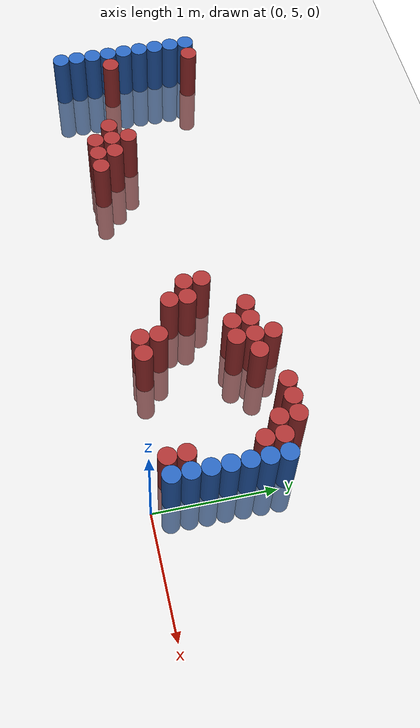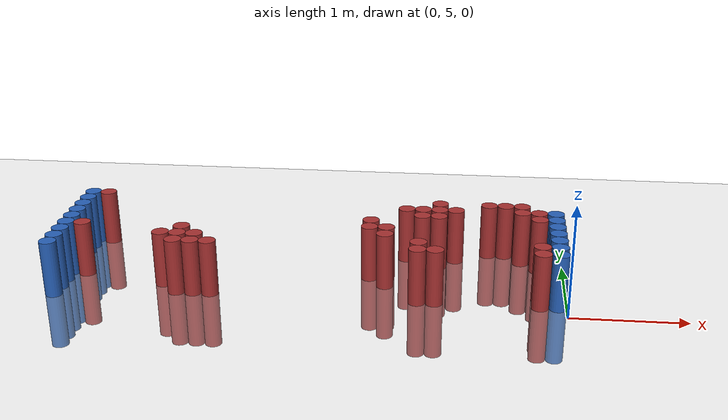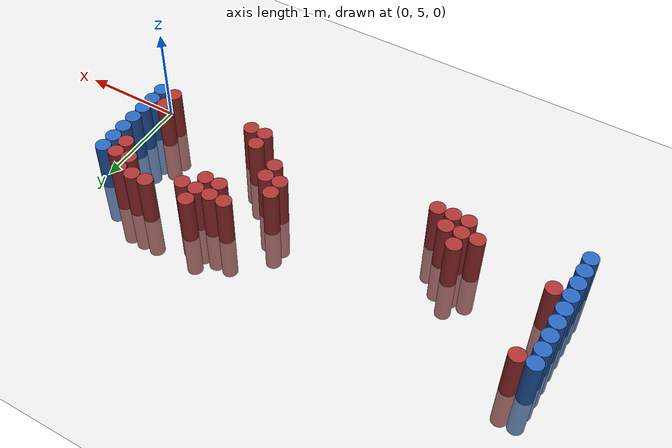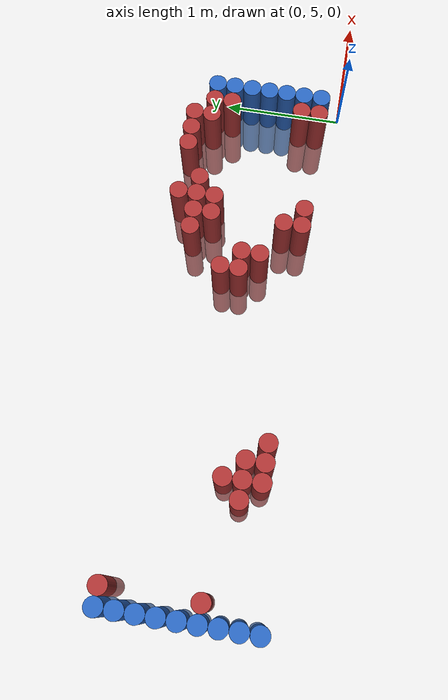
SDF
<sdf version="1.6">
 <world name="default">
  <model name="ground_plane">
   <static>1</static>
   <link name="link">
    <collision name="collision">
     <geometry><plane><normal>0 0 1</normal><size>100 100</size></plane></geometry>
     <surface><friction><ode><mu>100</mu><mu2>50</mu2></ode></friction></surface>
    </collision>
    <visual name="visual">
     <cast_shadows>0</cast_shadows>
     <geometry><plane><normal>0 0 1</normal><size>100 100</size></plane></geometry>
     <material>
      <script><uri>file://media/materials/scripts/gazebo.material</uri><name>Gazebo/Grey</name></script>
     </material>
    </visual>
   </link>
  </model>
  <model name="unit_cylinder_95">
   <static>1</static>
   <pose>-4.425000 5.025000 0.000000 0.000000 0.000000 0.000000</pose>
   <link name="link">
    <inertial>
     <mass>1</mass>
     <inertia><ixx>0.145833</ixx><ixy>0</ixy><ixz>0</ixz><iyy>0.145833</iyy><iyz>0</iyz><izz>0.125</izz></inertia>
    </inertial>
    <collision name="collision">
     <geometry><cylinder><radius>0.075000</radius><length>1</length></cylinder></geometry>
    </collision>
    <visual name="visual">
     <geometry><cylinder><radius>0.075000</radius><length>1</length></cylinder></geometry>
     <material>
      <ambient>0.152000 0.379000 0.720000 1</ambient>
      <diffuse>0.152000 0.379000 0.720000 1</diffuse>
     </material>
     <material>
      <script><name>Gazebo/Grey</name><uri>file://media/materials/scripts/gazebo.material</uri></script>
     </material>
    </visual>
   </link>
  </model>
  <model name="unit_cylinder_96">
   <static>1</static>
   <pose>-4.425000 5.175000 0.000000 0.000000 0.000000 0.000000</pose>
   <link name="link">
    <inertial>
     <mass>1</mass>
     <inertia><ixx>0.145833</ixx><ixy>0</ixy><ixz>0</ixz><iyy>0.145833</iyy><iyz>0</iyz><izz>0.125</izz></inertia>
    </inertial>
    <collision name="collision">
     <geometry><cylinder><radius>0.075000</radius><length>1</length></cylinder></geometry>
    </collision>
    <visual name="visual">
     <geometry><cylinder><radius>0.075000</radius><length>1</length></cylinder></geometry>
     <material>
      <ambient>0.152000 0.379000 0.720000 1</ambient>
      <diffuse>0.152000 0.379000 0.720000 1</diffuse>
     </material>
     <material>
      <script><name>Gazebo/Grey</name><uri>file://media/materials/scripts/gazebo.material</uri></script>
     </material>
    </visual>
   </link>
  </model>
  <model name="unit_cylinder_97">
   <static>1</static>
   <pose>-4.425000 5.325000 0.000000 0.000000 0.000000 0.000000</pose>
   <link name="link">
    <inertial>
     <mass>1</mass>
     <inertia><ixx>0.145833</ixx><ixy>0</ixy><ixz>0</ixz><iyy>0.145833</iyy><iyz>0</iyz><izz>0.125</izz></inertia>
    </inertial>
    <collision name="collision">
     <geometry><cylinder><radius>0.075000</radius><length>1</length></cylinder></geometry>
    </collision>
    <visual name="visual">
     <geometry><cylinder><radius>0.075000</radius><length>1</length></cylinder></geometry>
     <material>
      <ambient>0.152000 0.379000 0.720000 1</ambient>
      <diffuse>0.152000 0.379000 0.720000 1</diffuse>
     </material>
     <material>
      <script><name>Gazebo/Grey</name><uri>file://media/materials/scripts/gazebo.material</uri></script>
     </material>
    </visual>
   </link>
  </model>
  <model name="unit_cylinder_98">
   <static>1</static>
   <pose>-4.425000 5.475000 0.000000 0.000000 0.000000 0.000000</pose>
   <link name="link">
    <inertial>
     <mass>1</mass>
     <inertia><ixx>0.145833</ixx><ixy>0</ixy><ixz>0</ixz><iyy>0.145833</iyy><iyz>0</iyz><izz>0.125</izz></inertia>
    </inertial>
    <collision name="collision">
     <geometry><cylinder><radius>0.075000</radius><length>1</length></cylinder></geometry>
    </collision>
    <visual name="visual">
     <geometry><cylinder><radius>0.075000</radius><length>1</length></cylinder></geometry>
     <material>
      <ambient>0.152000 0.379000 0.720000 1</ambient>
      <diffuse>0.152000 0.379000 0.720000 1</diffuse>
     </material>
     <material>
      <script><name>Gazebo/Grey</name><uri>file://media/materials/scripts/gazebo.material</uri></script>
     </material>
    </visual>
   </link>
  </model>
  <model name="unit_cylinder_99">
   <static>1</static>
   <pose>-4.425000 5.625000 0.000000 0.000000 0.000000 0.000000</pose>
   <link name="link">
    <inertial>
     <mass>1</mass>
     <inertia><ixx>0.145833</ixx><ixy>0</ixy><ixz>0</ixz><iyy>0.145833</iyy><iyz>0</iyz><izz>0.125</izz></inertia>
    </inertial>
    <collision name="collision">
     <geometry><cylinder><radius>0.075000</radius><length>1</length></cylinder></geometry>
    </collision>
    <visual name="visual">
     <geometry><cylinder><radius>0.075000</radius><length>1</length></cylinder></geometry>
     <material>
      <ambient>0.152000 0.379000 0.720000 1</ambient>
      <diffuse>0.152000 0.379000 0.720000 1</diffuse>
     </material>
     <material>
      <script><name>Gazebo/Grey</name><uri>file://media/materials/scripts/gazebo.material</uri></script>
     </material>
    </visual>
   </link>
  </model>
  <model name="unit_cylinder_100">
   <static>1</static>
   <pose>-4.425000 5.775000 0.000000 0.000000 0.000000 0.000000</pose>
   <link name="link">
    <inertial>
     <mass>1</mass>
     <inertia><ixx>0.145833</ixx><ixy>0</ixy><ixz>0</ixz><iyy>0.145833</iyy><iyz>0</iyz><izz>0.125</izz></inertia>
    </inertial>
    <collision name="collision">
     <geometry><cylinder><radius>0.075000</radius><length>1</length></cylinder></geometry>
    </collision>
    <visual name="visual">
     <geometry><cylinder><radius>0.075000</radius><length>1</length></cylinder></geometry>
     <material>
      <ambient>0.152000 0.379000 0.720000 1</ambient>
      <diffuse>0.152000 0.379000 0.720000 1</diffuse>
     </material>
     <material>
      <script><name>Gazebo/Grey</name><uri>file://media/materials/scripts/gazebo.material</uri></script>
     </material>
    </visual>
   </link>
  </model>
  <model name="unit_cylinder_101">
   <static>1</static>
   <pose>-4.425000 5.925000 0.000000 0.000000 0.000000 0.000000</pose>
   <link name="link">
    <inertial>
     <mass>1</mass>
     <inertia><ixx>0.145833</ixx><ixy>0</ixy><ixz>0</ixz><iyy>0.145833</iyy><iyz>0</iyz><izz>0.125</izz></inertia>
    </inertial>
    <collision name="collision">
     <geometry><cylinder><radius>0.075000</radius><length>1</length></cylinder></geometry>
    </collision>
    <visual name="visual">
     <geometry><cylinder><radius>0.075000</radius><length>1</length></cylinder></geometry>
     <material>
      <ambient>0.152000 0.379000 0.720000 1</ambient>
      <diffuse>0.152000 0.379000 0.720000 1</diffuse>
     </material>
     <material>
      <script><name>Gazebo/Grey</name><uri>file://media/materials/scripts/gazebo.material</uri></script>
     </material>
    </visual>
   </link>
  </model>
  <model name="unit_cylinder_102">
   <static>1</static>
   <pose>-4.425000 6.075000 0.000000 0.000000 0.000000 0.000000</pose>
   <link name="link">
    <inertial>
     <mass>1</mass>
     <inertia><ixx>0.145833</ixx><ixy>0</ixy><ixz>0</ixz><iyy>0.145833</iyy><iyz>0</iyz><izz>0.125</izz></inertia>
    </inertial>
    <collision name="collision">
     <geometry><cylinder><radius>0.075000</radius><length>1</length></cylinder></geometry>
    </collision>
    <visual name="visual">
     <geometry><cylinder><radius>0.075000</radius><length>1</length></cylinder></geometry>
     <material>
      <ambient>0.152000 0.379000 0.720000 1</ambient>
      <diffuse>0.152000 0.379000 0.720000 1</diffuse>
     </material>
     <material>
      <script><name>Gazebo/Grey</name><uri>file://media/materials/scripts/gazebo.material</uri></script>
     </material>
    </visual>
   </link>
  </model>
  <model name="unit_cylinder_103">
   <static>1</static>
   <pose>-4.425000 6.225000 0.000000 0.000000 0.000000 0.000000</pose>
   <link name="link">
    <inertial>
     <mass>1</mass>
     <inertia><ixx>0.145833</ixx><ixy>0</ixy><ixz>0</ixz><iyy>0.145833</iyy><iyz>0</iyz><izz>0.125</izz></inertia>
    </inertial>
    <collision name="collision">
     <geometry><cylinder><radius>0.075000</radius><length>1</length></cylinder></geometry>
    </collision>
    <visual name="visual">
     <geometry><cylinder><radius>0.075000</radius><length>1</length></cylinder></geometry>
     <material>
      <ambient>0.152000 0.379000 0.720000 1</ambient>
      <diffuse>0.152000 0.379000 0.720000 1</diffuse>
     </material>
     <material>
      <script><name>Gazebo/Grey</name><uri>file://media/materials/scripts/gazebo.material</uri></script>
     </material>
    </visual>
   </link>
  </model>
  <model name="unit_cylinder_126">
   <static>1</static>
   <pose>-4.275000 5.475000 0.000000 0.000000 0.000000 0.000000</pose>
   <link name="link">
    <inertial>
     <mass>1</mass>
     <inertia><ixx>0.145833</ixx><ixy>0</ixy><ixz>0</ixz><iyy>0.145833</iyy><iyz>0</iyz><izz>0.125</izz></inertia>
    </inertial>
    <collision name="collision">
     <geometry><cylinder><radius>0.075000</radius><length>1</length></cylinder></geometry>
    </collision>
    <visual name="visual">
     <geometry><cylinder><radius>0.075000</radius><length>1</length></cylinder></geometry>
     <material>
      <ambient>0.648000 0.192000 0.192000 1</ambient>
      <diffuse>0.648000 0.192000 0.192000 1</diffuse>
     </material>
     <material>
      <script><name>Gazebo/Grey</name><uri>file://media/materials/scripts/gazebo.material</uri></script>
     </material>
    </visual>
   </link>
  </model>
  <model name="unit_cylinder_127">
   <static>1</static>
   <pose>-4.275000 6.225000 0.000000 0.000000 0.000000 0.000000</pose>
   <link name="link">
    <inertial>
     <mass>1</mass>
     <inertia><ixx>0.145833</ixx><ixy>0</ixy><ixz>0</ixz><iyy>0.145833</iyy><iyz>0</iyz><izz>0.125</izz></inertia>
    </inertial>
    <collision name="collision">
     <geometry><cylinder><radius>0.075000</radius><length>1</length></cylinder></geometry>
    </collision>
    <visual name="visual">
     <geometry><cylinder><radius>0.075000</radius><length>1</length></cylinder></geometry>
     <material>
      <ambient>0.648000 0.192000 0.192000 1</ambient>
      <diffuse>0.648000 0.192000 0.192000 1</diffuse>
     </material>
     <material>
      <script><name>Gazebo/Grey</name><uri>file://media/materials/scripts/gazebo.material</uri></script>
     </material>
    </visual>
   </link>
  </model>
  <model name="unit_cylinder_157">
   <static>1</static>
   <pose>-3.525000 5.325000 0.000000 0.000000 0.000000 0.000000</pose>
   <link name="link">
    <inertial>
     <mass>1</mass>
     <inertia><ixx>0.145833</ixx><ixy>0</ixy><ixz>0</ixz><iyy>0.145833</iyy><iyz>0</iyz><izz>0.125</izz></inertia>
    </inertial>
    <collision name="collision">
     <geometry><cylinder><radius>0.075000</radius><length>1</length></cylinder></geometry>
    </collision>
    <visual name="visual">
     <geometry><cylinder><radius>0.075000</radius><length>1</length></cylinder></geometry>
     <material>
      <ambient>0.648000 0.192000 0.192000 1</ambient>
      <diffuse>0.648000 0.192000 0.192000 1</diffuse>
     </material>
     <material>
      <script><name>Gazebo/Grey</name><uri>file://media/materials/scripts/gazebo.material</uri></script>
     </material>
    </visual>
   </link>
  </model>
  <model name="unit_cylinder_160">
   <static>1</static>
   <pose>-3.375000 5.175000 0.000000 0.000000 0.000000 0.000000</pose>
   <link name="link">
    <inertial>
     <mass>1</mass>
     <inertia><ixx>0.145833</ixx><ixy>0</ixy><ixz>0</ixz><iyy>0.145833</iyy><iyz>0</iyz><izz>0.125</izz></inertia>
    </inertial>
    <collision name="collision">
     <geometry><cylinder><radius>0.075000</radius><length>1</length></cylinder></geometry>
    </collision>
    <visual name="visual">
     <geometry><cylinder><radius>0.075000</radius><length>1</length></cylinder></geometry>
     <material>
      <ambient>0.648000 0.192000 0.192000 1</ambient>
      <diffuse>0.648000 0.192000 0.192000 1</diffuse>
     </material>
     <material>
      <script><name>Gazebo/Grey</name><uri>file://media/materials/scripts/gazebo.material</uri></script>
     </material>
    </visual>
   </link>
  </model>
  <model name="unit_cylinder_161">
   <static>1</static>
   <pose>-3.375000 5.325000 0.000000 0.000000 0.000000 0.000000</pose>
   <link name="link">
    <inertial>
     <mass>1</mass>
     <inertia><ixx>0.145833</ixx><ixy>0</ixy><ixz>0</ixz><iyy>0.145833</iyy><iyz>0</iyz><izz>0.125</izz></inertia>
    </inertial>
    <collision name="collision">
     <geometry><cylinder><radius>0.075000</radius><length>1</length></cylinder></geometry>
    </collision>
    <visual name="visual">
     <geometry><cylinder><radius>0.075000</radius><length>1</length></cylinder></geometry>
     <material>
      <ambient>0.648000 0.192000 0.192000 1</ambient>
      <diffuse>0.648000 0.192000 0.192000 1</diffuse>
     </material>
     <material>
      <script><name>Gazebo/Grey</name><uri>file://media/materials/scripts/gazebo.material</uri></script>
     </material>
    </visual>
   </link>
  </model>
  <model name="unit_cylinder_162">
   <static>1</static>
   <pose>-3.375000 5.475000 0.000000 0.000000 0.000000 0.000000</pose>
   <link name="link">
    <inertial>
     <mass>1</mass>
     <inertia><ixx>0.145833</ixx><ixy>0</ixy><ixz>0</ixz><iyy>0.145833</iyy><iyz>0</iyz><izz>0.125</izz></inertia>
    </inertial>
    <collision name="collision">
     <geometry><cylinder><radius>0.075000</radius><length>1</length></cylinder></geometry>
    </collision>
    <visual name="visual">
     <geometry><cylinder><radius>0.075000</radius><length>1</length></cylinder></geometry>
     <material>
      <ambient>0.648000 0.192000 0.192000 1</ambient>
      <diffuse>0.648000 0.192000 0.192000 1</diffuse>
     </material>
     <material>
      <script><name>Gazebo/Grey</name><uri>file://media/materials/scripts/gazebo.material</uri></script>
     </material>
    </visual>
   </link>
  </model>
  <model name="unit_cylinder_163">
   <static>1</static>
   <pose>-3.225000 5.175000 0.000000 0.000000 0.000000 0.000000</pose>
   <link name="link">
    <inertial>
     <mass>1</mass>
     <inertia><ixx>0.145833</ixx><ixy>0</ixy><ixz>0</ixz><iyy>0.145833</iyy><iyz>0</iyz><izz>0.125</izz></inertia>
    </inertial>
    <collision name="collision">
     <geometry><cylinder><radius>0.075000</radius><length>1</length></cylinder></geometry>
    </collision>
    <visual name="visual">
     <geometry><cylinder><radius>0.075000</radius><length>1</length></cylinder></geometry>
     <material>
      <ambient>0.648000 0.192000 0.192000 1</ambient>
      <diffuse>0.648000 0.192000 0.192000 1</diffuse>
     </material>
     <material>
      <script><name>Gazebo/Grey</name><uri>file://media/materials/scripts/gazebo.material</uri></script>
     </material>
    </visual>
   </link>
  </model>
  <model name="unit_cylinder_164">
   <static>1</static>
   <pose>-3.225000 5.325000 0.000000 0.000000 0.000000 0.000000</pose>
   <link name="link">
    <inertial>
     <mass>1</mass>
     <inertia><ixx>0.145833</ixx><ixy>0</ixy><ixz>0</ixz><iyy>0.145833</iyy><iyz>0</iyz><izz>0.125</izz></inertia>
    </inertial>
    <collision name="collision">
     <geometry><cylinder><radius>0.075000</radius><length>1</length></cylinder></geometry>
    </collision>
    <visual name="visual">
     <geometry><cylinder><radius>0.075000</radius><length>1</length></cylinder></geometry>
     <material>
      <ambient>0.648000 0.192000 0.192000 1</ambient>
      <diffuse>0.648000 0.192000 0.192000 1</diffuse>
     </material>
     <material>
      <script><name>Gazebo/Grey</name><uri>file://media/materials/scripts/gazebo.material</uri></script>
     </material>
    </visual>
   </link>
  </model>
  <model name="unit_cylinder_165">
   <static>1</static>
   <pose>-3.075000 5.175000 0.000000 0.000000 0.000000 0.000000</pose>
   <link name="link">
    <inertial>
     <mass>1</mass>
     <inertia><ixx>0.145833</ixx><ixy>0</ixy><ixz>0</ixz><iyy>0.145833</iyy><iyz>0</iyz><izz>0.125</izz></inertia>
    </inertial>
    <collision name="collision">
     <geometry><cylinder><radius>0.075000</radius><length>1</length></cylinder></geometry>
    </collision>
    <visual name="visual">
     <geometry><cylinder><radius>0.075000</radius><length>1</length></cylinder></geometry>
     <material>
      <ambient>0.648000 0.192000 0.192000 1</ambient>
      <diffuse>0.648000 0.192000 0.192000 1</diffuse>
     </material>
     <material>
      <script><name>Gazebo/Grey</name><uri>file://media/materials/scripts/gazebo.material</uri></script>
     </material>
    </visual>
   </link>
  </model>
  <model name="unit_cylinder_196">
   <static>1</static>
   <pose>-1.725000 5.625000 0.000000 0.000000 0.000000 0.000000</pose>
   <link name="link">
    <inertial>
     <mass>1</mass>
     <inertia><ixx>0.145833</ixx><ixy>0</ixy><ixz>0</ixz><iyy>0.145833</iyy><iyz>0</iyz><izz>0.125</izz></inertia>
    </inertial>
    <collision name="collision">
     <geometry><cylinder><radius>0.075000</radius><length>1</length></cylinder></geometry>
    </collision>
    <visual name="visual">
     <geometry><cylinder><radius>0.075000</radius><length>1</length></cylinder></geometry>
     <material>
      <ambient>0.648000 0.192000 0.192000 1</ambient>
      <diffuse>0.648000 0.192000 0.192000 1</diffuse>
     </material>
     <material>
      <script><name>Gazebo/Grey</name><uri>file://media/materials/scripts/gazebo.material</uri></script>
     </material>
    </visual>
   </link>
  </model>
  <model name="unit_cylinder_197">
   <static>1</static>
   <pose>-1.725000 5.775000 0.000000 0.000000 0.000000 0.000000</pose>
   <link name="link">
    <inertial>
     <mass>1</mass>
     <inertia><ixx>0.145833</ixx><ixy>0</ixy><ixz>0</ixz><iyy>0.145833</iyy><iyz>0</iyz><izz>0.125</izz></inertia>
    </inertial>
    <collision name="collision">
     <geometry><cylinder><radius>0.075000</radius><length>1</length></cylinder></geometry>
    </collision>
    <visual name="visual">
     <geometry><cylinder><radius>0.075000</radius><length>1</length></cylinder></geometry>
     <material>
      <ambient>0.648000 0.192000 0.192000 1</ambient>
      <diffuse>0.648000 0.192000 0.192000 1</diffuse>
     </material>
     <material>
      <script><name>Gazebo/Grey</name><uri>file://media/materials/scripts/gazebo.material</uri></script>
     </material>
    </visual>
   </link>
  </model>
  <model name="unit_cylinder_202">
   <static>1</static>
   <pose>-1.575000 5.475000 0.000000 0.000000 0.000000 0.000000</pose>
   <link name="link">
    <inertial>
     <mass>1</mass>
     <inertia><ixx>0.145833</ixx><ixy>0</ixy><ixz>0</ixz><iyy>0.145833</iyy><iyz>0</iyz><izz>0.125</izz></inertia>
    </inertial>
    <collision name="collision">
     <geometry><cylinder><radius>0.075000</radius><length>1</length></cylinder></geometry>
    </collision>
    <visual name="visual">
     <geometry><cylinder><radius>0.075000</radius><length>1</length></cylinder></geometry>
     <material>
      <ambient>0.648000 0.192000 0.192000 1</ambient>
      <diffuse>0.648000 0.192000 0.192000 1</diffuse>
     </material>
     <material>
      <script><name>Gazebo/Grey</name><uri>file://media/materials/scripts/gazebo.material</uri></script>
     </material>
    </visual>
   </link>
  </model>
  <model name="unit_cylinder_203">
   <static>1</static>
   <pose>-1.575000 5.625000 0.000000 0.000000 0.000000 0.000000</pose>
   <link name="link">
    <inertial>
     <mass>1</mass>
     <inertia><ixx>0.145833</ixx><ixy>0</ixy><ixz>0</ixz><iyy>0.145833</iyy><iyz>0</iyz><izz>0.125</izz></inertia>
    </inertial>
    <collision name="collision">
     <geometry><cylinder><radius>0.075000</radius><length>1</length></cylinder></geometry>
    </collision>
    <visual name="visual">
     <geometry><cylinder><radius>0.075000</radius><length>1</length></cylinder></geometry>
     <material>
      <ambient>0.648000 0.192000 0.192000 1</ambient>
      <diffuse>0.648000 0.192000 0.192000 1</diffuse>
     </material>
     <material>
      <script><name>Gazebo/Grey</name><uri>file://media/materials/scripts/gazebo.material</uri></script>
     </material>
    </visual>
   </link>
  </model>
  <model name="unit_cylinder_208">
   <static>1</static>
   <pose>-1.425000 6.075000 0.000000 0.000000 0.000000 0.000000</pose>
   <link name="link">
    <inertial>
     <mass>1</mass>
     <inertia><ixx>0.145833</ixx><ixy>0</ixy><ixz>0</ixz><iyy>0.145833</iyy><iyz>0</iyz><izz>0.125</izz></inertia>
    </inertial>
    <collision name="collision">
     <geometry><cylinder><radius>0.075000</radius><length>1</length></cylinder></geometry>
    </collision>
    <visual name="visual">
     <geometry><cylinder><radius>0.075000</radius><length>1</length></cylinder></geometry>
     <material>
      <ambient>0.648000 0.192000 0.192000 1</ambient>
      <diffuse>0.648000 0.192000 0.192000 1</diffuse>
     </material>
     <material>
      <script><name>Gazebo/Grey</name><uri>file://media/materials/scripts/gazebo.material</uri></script>
     </material>
    </visual>
   </link>
  </model>
  <model name="unit_cylinder_211">
   <static>1</static>
   <pose>-1.275000 5.175000 0.000000 0.000000 0.000000 0.000000</pose>
   <link name="link">
    <inertial>
     <mass>1</mass>
     <inertia><ixx>0.145833</ixx><ixy>0</ixy><ixz>0</ixz><iyy>0.145833</iyy><iyz>0</iyz><izz>0.125</izz></inertia>
    </inertial>
    <collision name="collision">
     <geometry><cylinder><radius>0.075000</radius><length>1</length></cylinder></geometry>
    </collision>
    <visual name="visual">
     <geometry><cylinder><radius>0.075000</radius><length>1</length></cylinder></geometry>
     <material>
      <ambient>0.648000 0.192000 0.192000 1</ambient>
      <diffuse>0.648000 0.192000 0.192000 1</diffuse>
     </material>
     <material>
      <script><name>Gazebo/Grey</name><uri>file://media/materials/scripts/gazebo.material</uri></script>
     </material>
    </visual>
   </link>
  </model>
  <model name="unit_cylinder_212">
   <static>1</static>
   <pose>-1.275000 5.325000 0.000000 0.000000 0.000000 0.000000</pose>
   <link name="link">
    <inertial>
     <mass>1</mass>
     <inertia><ixx>0.145833</ixx><ixy>0</ixy><ixz>0</ixz><iyy>0.145833</iyy><iyz>0</iyz><izz>0.125</izz></inertia>
    </inertial>
    <collision name="collision">
     <geometry><cylinder><radius>0.075000</radius><length>1</length></cylinder></geometry>
    </collision>
    <visual name="visual">
     <geometry><cylinder><radius>0.075000</radius><length>1</length></cylinder></geometry>
     <material>
      <ambient>0.648000 0.192000 0.192000 1</ambient>
      <diffuse>0.648000 0.192000 0.192000 1</diffuse>
     </material>
     <material>
      <script><name>Gazebo/Grey</name><uri>file://media/materials/scripts/gazebo.material</uri></script>
     </material>
    </visual>
   </link>
  </model>
  <model name="unit_cylinder_213">
   <static>1</static>
   <pose>-1.275000 5.925000 0.000000 0.000000 0.000000 0.000000</pose>
   <link name="link">
    <inertial>
     <mass>1</mass>
     <inertia><ixx>0.145833</ixx><ixy>0</ixy><ixz>0</ixz><iyy>0.145833</iyy><iyz>0</iyz><izz>0.125</izz></inertia>
    </inertial>
    <collision name="collision">
     <geometry><cylinder><radius>0.075000</radius><length>1</length></cylinder></geometry>
    </collision>
    <visual name="visual">
     <geometry><cylinder><radius>0.075000</radius><length>1</length></cylinder></geometry>
     <material>
      <ambient>0.648000 0.192000 0.192000 1</ambient>
      <diffuse>0.648000 0.192000 0.192000 1</diffuse>
     </material>
     <material>
      <script><name>Gazebo/Grey</name><uri>file://media/materials/scripts/gazebo.material</uri></script>
     </material>
    </visual>
   </link>
  </model>
  <model name="unit_cylinder_214">
   <static>1</static>
   <pose>-1.275000 6.075000 0.000000 0.000000 0.000000 0.000000</pose>
   <link name="link">
    <inertial>
     <mass>1</mass>
     <inertia><ixx>0.145833</ixx><ixy>0</ixy><ixz>0</ixz><iyy>0.145833</iyy><iyz>0</iyz><izz>0.125</izz></inertia>
    </inertial>
    <collision name="collision">
     <geometry><cylinder><radius>0.075000</radius><length>1</length></cylinder></geometry>
    </collision>
    <visual name="visual">
     <geometry><cylinder><radius>0.075000</radius><length>1</length></cylinder></geometry>
     <material>
      <ambient>0.648000 0.192000 0.192000 1</ambient>
      <diffuse>0.648000 0.192000 0.192000 1</diffuse>
     </material>
     <material>
      <script><name>Gazebo/Grey</name><uri>file://media/materials/scripts/gazebo.material</uri></script>
     </material>
    </visual>
   </link>
  </model>
  <model name="unit_cylinder_217">
   <static>1</static>
   <pose>-1.125000 5.175000 0.000000 0.000000 0.000000 0.000000</pose>
   <link name="link">
    <inertial>
     <mass>1</mass>
     <inertia><ixx>0.145833</ixx><ixy>0</ixy><ixz>0</ixz><iyy>0.145833</iyy><iyz>0</iyz><izz>0.125</izz></inertia>
    </inertial>
    <collision name="collision">
     <geometry><cylinder><radius>0.075000</radius><length>1</length></cylinder></geometry>
    </collision>
    <visual name="visual">
     <geometry><cylinder><radius>0.075000</radius><length>1</length></cylinder></geometry>
     <material>
      <ambient>0.648000 0.192000 0.192000 1</ambient>
      <diffuse>0.648000 0.192000 0.192000 1</diffuse>
     </material>
     <material>
      <script><name>Gazebo/Grey</name><uri>file://media/materials/scripts/gazebo.material</uri></script>
     </material>
    </visual>
   </link>
  </model>
  <model name="unit_cylinder_218">
   <static>1</static>
   <pose>-1.125000 5.925000 0.000000 0.000000 0.000000 0.000000</pose>
   <link name="link">
    <inertial>
     <mass>1</mass>
     <inertia><ixx>0.145833</ixx><ixy>0</ixy><ixz>0</ixz><iyy>0.145833</iyy><iyz>0</iyz><izz>0.125</izz></inertia>
    </inertial>
    <collision name="collision">
     <geometry><cylinder><radius>0.075000</radius><length>1</length></cylinder></geometry>
    </collision>
    <visual name="visual">
     <geometry><cylinder><radius>0.075000</radius><length>1</length></cylinder></geometry>
     <material>
      <ambient>0.648000 0.192000 0.192000 1</ambient>
      <diffuse>0.648000 0.192000 0.192000 1</diffuse>
     </material>
     <material>
      <script><name>Gazebo/Grey</name><uri>file://media/materials/scripts/gazebo.material</uri></script>
     </material>
    </visual>
   </link>
  </model>
  <model name="unit_cylinder_219">
   <static>1</static>
   <pose>-1.125000 6.075000 0.000000 0.000000 0.000000 0.000000</pose>
   <link name="link">
    <inertial>
     <mass>1</mass>
     <inertia><ixx>0.145833</ixx><ixy>0</ixy><ixz>0</ixz><iyy>0.145833</iyy><iyz>0</iyz><izz>0.125</izz></inertia>
    </inertial>
    <collision name="collision">
     <geometry><cylinder><radius>0.075000</radius><length>1</length></cylinder></geometry>
    </collision>
    <visual name="visual">
     <geometry><cylinder><radius>0.075000</radius><length>1</length></cylinder></geometry>
     <material>
      <ambient>0.648000 0.192000 0.192000 1</ambient>
      <diffuse>0.648000 0.192000 0.192000 1</diffuse>
     </material>
     <material>
      <script><name>Gazebo/Grey</name><uri>file://media/materials/scripts/gazebo.material</uri></script>
     </material>
    </visual>
   </link>
  </model>
  <model name="unit_cylinder_220">
   <static>1</static>
   <pose>-1.125000 6.225000 0.000000 0.000000 0.000000 0.000000</pose>
   <link name="link">
    <inertial>
     <mass>1</mass>
     <inertia><ixx>0.145833</ixx><ixy>0</ixy><ixz>0</ixz><iyy>0.145833</iyy><iyz>0</iyz><izz>0.125</izz></inertia>
    </inertial>
    <collision name="collision">
     <geometry><cylinder><radius>0.075000</radius><length>1</length></cylinder></geometry>
    </collision>
    <visual name="visual">
     <geometry><cylinder><radius>0.075000</radius><length>1</length></cylinder></geometry>
     <material>
      <ambient>0.648000 0.192000 0.192000 1</ambient>
      <diffuse>0.648000 0.192000 0.192000 1</diffuse>
     </material>
     <material>
      <script><name>Gazebo/Grey</name><uri>file://media/materials/scripts/gazebo.material</uri></script>
     </material>
    </visual>
   </link>
  </model>
  <model name="unit_cylinder_223">
   <static>1</static>
   <pose>-0.975000 6.075000 0.000000 0.000000 0.000000 0.000000</pose>
   <link name="link">
    <inertial>
     <mass>1</mass>
     <inertia><ixx>0.145833</ixx><ixy>0</ixy><ixz>0</ixz><iyy>0.145833</iyy><iyz>0</iyz><izz>0.125</izz></inertia>
    </inertial>
    <collision name="collision">
     <geometry><cylinder><radius>0.075000</radius><length>1</length></cylinder></geometry>
    </collision>
    <visual name="visual">
     <geometry><cylinder><radius>0.075000</radius><length>1</length></cylinder></geometry>
     <material>
      <ambient>0.648000 0.192000 0.192000 1</ambient>
      <diffuse>0.648000 0.192000 0.192000 1</diffuse>
     </material>
     <material>
      <script><name>Gazebo/Grey</name><uri>file://media/materials/scripts/gazebo.material</uri></script>
     </material>
    </visual>
   </link>
  </model>
  <model name="unit_cylinder_224">
   <static>1</static>
   <pose>-0.675000 6.225000 0.000000 0.000000 0.000000 0.000000</pose>
   <link name="link">
    <inertial>
     <mass>1</mass>
     <inertia><ixx>0.145833</ixx><ixy>0</ixy><ixz>0</ixz><iyy>0.145833</iyy><iyz>0</iyz><izz>0.125</izz></inertia>
    </inertial>
    <collision name="collision">
     <geometry><cylinder><radius>0.075000</radius><length>1</length></cylinder></geometry>
    </collision>
    <visual name="visual">
     <geometry><cylinder><radius>0.075000</radius><length>1</length></cylinder></geometry>
     <material>
      <ambient>0.648000 0.192000 0.192000 1</ambient>
      <diffuse>0.648000 0.192000 0.192000 1</diffuse>
     </material>
     <material>
      <script><name>Gazebo/Grey</name><uri>file://media/materials/scripts/gazebo.material</uri></script>
     </material>
    </visual>
   </link>
  </model>
  <model name="unit_cylinder_227">
   <static>1</static>
   <pose>-0.525000 6.225000 0.000000 0.000000 0.000000 0.000000</pose>
   <link name="link">
    <inertial>
     <mass>1</mass>
     <inertia><ixx>0.145833</ixx><ixy>0</ixy><ixz>0</ixz><iyy>0.145833</iyy><iyz>0</iyz><izz>0.125</izz></inertia>
    </inertial>
    <collision name="collision">
     <geometry><cylinder><radius>0.075000</radius><length>1</length></cylinder></geometry>
    </collision>
    <visual name="visual">
     <geometry><cylinder><radius>0.075000</radius><length>1</length></cylinder></geometry>
     <material>
      <ambient>0.648000 0.192000 0.192000 1</ambient>
      <diffuse>0.648000 0.192000 0.192000 1</diffuse>
     </material>
     <material>
      <script><name>Gazebo/Grey</name><uri>file://media/materials/scripts/gazebo.material</uri></script>
     </material>
    </visual>
   </link>
  </model>
  <model name="unit_cylinder_230">
   <static>1</static>
   <pose>-0.375000 6.075000 0.000000 0.000000 0.000000 0.000000</pose>
   <link name="link">
    <inertial>
     <mass>1</mass>
     <inertia><ixx>0.145833</ixx><ixy>0</ixy><ixz>0</ixz><iyy>0.145833</iyy><iyz>0</iyz><izz>0.125</izz></inertia>
    </inertial>
    <collision name="collision">
     <geometry><cylinder><radius>0.075000</radius><length>1</length></cylinder></geometry>
    </collision>
    <visual name="visual">
     <geometry><cylinder><radius>0.075000</radius><length>1</length></cylinder></geometry>
     <material>
      <ambient>0.648000 0.192000 0.192000 1</ambient>
      <diffuse>0.648000 0.192000 0.192000 1</diffuse>
     </material>
     <material>
      <script><name>Gazebo/Grey</name><uri>file://media/materials/scripts/gazebo.material</uri></script>
     </material>
    </visual>
   </link>
  </model>
  <model name="unit_cylinder_231">
   <static>1</static>
   <pose>-0.375000 6.225000 0.000000 0.000000 0.000000 0.000000</pose>
   <link name="link">
    <inertial>
     <mass>1</mass>
     <inertia><ixx>0.145833</ixx><ixy>0</ixy><ixz>0</ixz><iyy>0.145833</iyy><iyz>0</iyz><izz>0.125</izz></inertia>
    </inertial>
    <collision name="collision">
     <geometry><cylinder><radius>0.075000</radius><length>1</length></cylinder></geometry>
    </collision>
    <visual name="visual">
     <geometry><cylinder><radius>0.075000</radius><length>1</length></cylinder></geometry>
     <material>
      <ambient>0.648000 0.192000 0.192000 1</ambient>
      <diffuse>0.648000 0.192000 0.192000 1</diffuse>
     </material>
     <material>
      <script><name>Gazebo/Grey</name><uri>file://media/materials/scripts/gazebo.material</uri></script>
     </material>
    </visual>
   </link>
  </model>
  <model name="unit_cylinder_236">
   <static>1</static>
   <pose>-0.225000 5.175000 0.000000 0.000000 0.000000 0.000000</pose>
   <link name="link">
    <inertial>
     <mass>1</mass>
     <inertia><ixx>0.145833</ixx><ixy>0</ixy><ixz>0</ixz><iyy>0.145833</iyy><iyz>0</iyz><izz>0.125</izz></inertia>
    </inertial>
    <collision name="collision">
     <geometry><cylinder><radius>0.075000</radius><length>1</length></cylinder></geometry>
    </collision>
    <visual name="visual">
     <geometry><cylinder><radius>0.075000</radius><length>1</length></cylinder></geometry>
     <material>
      <ambient>0.648000 0.192000 0.192000 1</ambient>
      <diffuse>0.648000 0.192000 0.192000 1</diffuse>
     </material>
     <material>
      <script><name>Gazebo/Grey</name><uri>file://media/materials/scripts/gazebo.material</uri></script>
     </material>
    </visual>
   </link>
  </model>
  <model name="unit_cylinder_237">
   <static>1</static>
   <pose>-0.225000 5.325000 0.000000 0.000000 0.000000 0.000000</pose>
   <link name="link">
    <inertial>
     <mass>1</mass>
     <inertia><ixx>0.145833</ixx><ixy>0</ixy><ixz>0</ixz><iyy>0.145833</iyy><iyz>0</iyz><izz>0.125</izz></inertia>
    </inertial>
    <collision name="collision">
     <geometry><cylinder><radius>0.075000</radius><length>1</length></cylinder></geometry>
    </collision>
    <visual name="visual">
     <geometry><cylinder><radius>0.075000</radius><length>1</length></cylinder></geometry>
     <material>
      <ambient>0.648000 0.192000 0.192000 1</ambient>
      <diffuse>0.648000 0.192000 0.192000 1</diffuse>
     </material>
     <material>
      <script><name>Gazebo/Grey</name><uri>file://media/materials/scripts/gazebo.material</uri></script>
     </material>
    </visual>
   </link>
  </model>
  <model name="unit_cylinder_238">
   <static>1</static>
   <pose>-0.225000 5.925000 0.000000 0.000000 0.000000 0.000000</pose>
   <link name="link">
    <inertial>
     <mass>1</mass>
     <inertia><ixx>0.145833</ixx><ixy>0</ixy><ixz>0</ixz><iyy>0.145833</iyy><iyz>0</iyz><izz>0.125</izz></inertia>
    </inertial>
    <collision name="collision">
     <geometry><cylinder><radius>0.075000</radius><length>1</length></cylinder></geometry>
    </collision>
    <visual name="visual">
     <geometry><cylinder><radius>0.075000</radius><length>1</length></cylinder></geometry>
     <material>
      <ambient>0.648000 0.192000 0.192000 1</ambient>
      <diffuse>0.648000 0.192000 0.192000 1</diffuse>
     </material>
     <material>
      <script><name>Gazebo/Grey</name><uri>file://media/materials/scripts/gazebo.material</uri></script>
     </material>
    </visual>
   </link>
  </model>
  <model name="unit_cylinder_239">
   <static>1</static>
   <pose>-0.225000 6.075000 0.000000 0.000000 0.000000 0.000000</pose>
   <link name="link">
    <inertial>
     <mass>1</mass>
     <inertia><ixx>0.145833</ixx><ixy>0</ixy><ixz>0</ixz><iyy>0.145833</iyy><iyz>0</iyz><izz>0.125</izz></inertia>
    </inertial>
    <collision name="collision">
     <geometry><cylinder><radius>0.075000</radius><length>1</length></cylinder></geometry>
    </collision>
    <visual name="visual">
     <geometry><cylinder><radius>0.075000</radius><length>1</length></cylinder></geometry>
     <material>
      <ambient>0.648000 0.192000 0.192000 1</ambient>
      <diffuse>0.648000 0.192000 0.192000 1</diffuse>
     </material>
     <material>
      <script><name>Gazebo/Grey</name><uri>file://media/materials/scripts/gazebo.material</uri></script>
     </material>
    </visual>
   </link>
  </model>
  <model name="unit_cylinder_254">
   <static>1</static>
   <pose>-0.075000 5.175000 0.000000 0.000000 0.000000 0.000000</pose>
   <link name="link">
    <inertial>
     <mass>1</mass>
     <inertia><ixx>0.145833</ixx><ixy>0</ixy><ixz>0</ixz><iyy>0.145833</iyy><iyz>0</iyz><izz>0.125</izz></inertia>
    </inertial>
    <collision name="collision">
     <geometry><cylinder><radius>0.075000</radius><length>1</length></cylinder></geometry>
    </collision>
    <visual name="visual">
     <geometry><cylinder><radius>0.075000</radius><length>1</length></cylinder></geometry>
     <material>
      <ambient>0.152000 0.379000 0.720000 1</ambient>
      <diffuse>0.152000 0.379000 0.720000 1</diffuse>
     </material>
     <material>
      <script><name>Gazebo/Grey</name><uri>file://media/materials/scripts/gazebo.material</uri></script>
     </material>
    </visual>
   </link>
  </model>
  <model name="unit_cylinder_255">
   <static>1</static>
   <pose>-0.075000 5.325000 0.000000 0.000000 0.000000 0.000000</pose>
   <link name="link">
    <inertial>
     <mass>1</mass>
     <inertia><ixx>0.145833</ixx><ixy>0</ixy><ixz>0</ixz><iyy>0.145833</iyy><iyz>0</iyz><izz>0.125</izz></inertia>
    </inertial>
    <collision name="collision">
     <geometry><cylinder><radius>0.075000</radius><length>1</length></cylinder></geometry>
    </collision>
    <visual name="visual">
     <geometry><cylinder><radius>0.075000</radius><length>1</length></cylinder></geometry>
     <material>
      <ambient>0.152000 0.379000 0.720000 1</ambient>
      <diffuse>0.152000 0.379000 0.720000 1</diffuse>
     </material>
     <material>
      <script><name>Gazebo/Grey</name><uri>file://media/materials/scripts/gazebo.material</uri></script>
     </material>
    </visual>
   </link>
  </model>
  <model name="unit_cylinder_256">
   <static>1</static>
   <pose>-0.075000 5.475000 0.000000 0.000000 0.000000 0.000000</pose>
   <link name="link">
    <inertial>
     <mass>1</mass>
     <inertia><ixx>0.145833</ixx><ixy>0</ixy><ixz>0</ixz><iyy>0.145833</iyy><iyz>0</iyz><izz>0.125</izz></inertia>
    </inertial>
    <collision name="collision">
     <geometry><cylinder><radius>0.075000</radius><length>1</length></cylinder></geometry>
    </collision>
    <visual name="visual">
     <geometry><cylinder><radius>0.075000</radius><length>1</length></cylinder></geometry>
     <material>
      <ambient>0.152000 0.379000 0.720000 1</ambient>
      <diffuse>0.152000 0.379000 0.720000 1</diffuse>
     </material>
     <material>
      <script><name>Gazebo/Grey</name><uri>file://media/materials/scripts/gazebo.material</uri></script>
     </material>
    </visual>
   </link>
  </model>
  <model name="unit_cylinder_257">
   <static>1</static>
   <pose>-0.075000 5.625000 0.000000 0.000000 0.000000 0.000000</pose>
   <link name="link">
    <inertial>
     <mass>1</mass>
     <inertia><ixx>0.145833</ixx><ixy>0</ixy><ixz>0</ixz><iyy>0.145833</iyy><iyz>0</iyz><izz>0.125</izz></inertia>
    </inertial>
    <collision name="collision">
     <geometry><cylinder><radius>0.075000</radius><length>1</length></cylinder></geometry>
    </collision>
    <visual name="visual">
     <geometry><cylinder><radius>0.075000</radius><length>1</length></cylinder></geometry>
     <material>
      <ambient>0.152000 0.379000 0.720000 1</ambient>
      <diffuse>0.152000 0.379000 0.720000 1</diffuse>
     </material>
     <material>
      <script><name>Gazebo/Grey</name><uri>file://media/materials/scripts/gazebo.material</uri></script>
     </material>
    </visual>
   </link>
  </model>
  <model name="unit_cylinder_258">
   <static>1</static>
   <pose>-0.075000 5.775000 0.000000 0.000000 0.000000 0.000000</pose>
   <link name="link">
    <inertial>
     <mass>1</mass>
     <inertia><ixx>0.145833</ixx><ixy>0</ixy><ixz>0</ixz><iyy>0.145833</iyy><iyz>0</iyz><izz>0.125</izz></inertia>
    </inertial>
    <collision name="collision">
     <geometry><cylinder><radius>0.075000</radius><length>1</length></cylinder></geometry>
    </collision>
    <visual name="visual">
     <geometry><cylinder><radius>0.075000</radius><length>1</length></cylinder></geometry>
     <material>
      <ambient>0.152000 0.379000 0.720000 1</ambient>
      <diffuse>0.152000 0.379000 0.720000 1</diffuse>
     </material>
     <material>
      <script><name>Gazebo/Grey</name><uri>file://media/materials/scripts/gazebo.material</uri></script>
     </material>
    </visual>
   </link>
  </model>
  <model name="unit_cylinder_259">
   <static>1</static>
   <pose>-0.075000 5.925000 0.000000 0.000000 0.000000 0.000000</pose>
   <link name="link">
    <inertial>
     <mass>1</mass>
     <inertia><ixx>0.145833</ixx><ixy>0</ixy><ixz>0</ixz><iyy>0.145833</iyy><iyz>0</iyz><izz>0.125</izz></inertia>
    </inertial>
    <collision name="collision">
     <geometry><cylinder><radius>0.075000</radius><length>1</length></cylinder></geometry>
    </collision>
    <visual name="visual">
     <geometry><cylinder><radius>0.075000</radius><length>1</length></cylinder></geometry>
     <material>
      <ambient>0.152000 0.379000 0.720000 1</ambient>
      <diffuse>0.152000 0.379000 0.720000 1</diffuse>
     </material>
     <material>
      <script><name>Gazebo/Grey</name><uri>file://media/materials/scripts/gazebo.material</uri></script>
     </material>
    </visual>
   </link>
  </model>
  <model name="unit_cylinder_260">
   <static>1</static>
   <pose>-0.075000 6.075000 0.000000 0.000000 0.000000 0.000000</pose>
   <link name="link">
    <inertial>
     <mass>1</mass>
     <inertia><ixx>0.145833</ixx><ixy>0</ixy><ixz>0</ixz><iyy>0.145833</iyy><iyz>0</iyz><izz>0.125</izz></inertia>
    </inertial>
    <collision name="collision">
     <geometry><cylinder><radius>0.075000</radius><length>1</length></cylinder></geometry>
    </collision>
    <visual name="visual">
     <geometry><cylinder><radius>0.075000</radius><length>1</length></cylinder></geometry>
     <material>
      <ambient>0.152000 0.379000 0.720000 1</ambient>
      <diffuse>0.152000 0.379000 0.720000 1</diffuse>
     </material>
     <material>
      <script><name>Gazebo/Grey</name><uri>file://media/materials/scripts/gazebo.material</uri></script>
     </material>
    </visual>
   </link>
  </model>
 </world>
</sdf>
